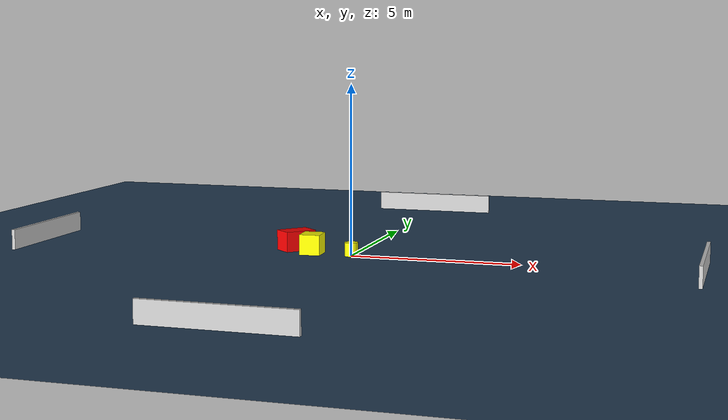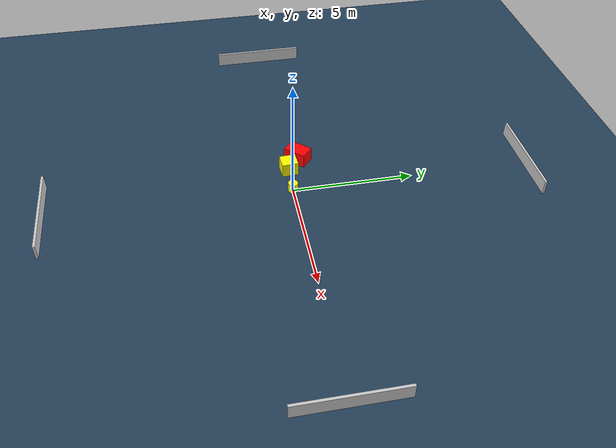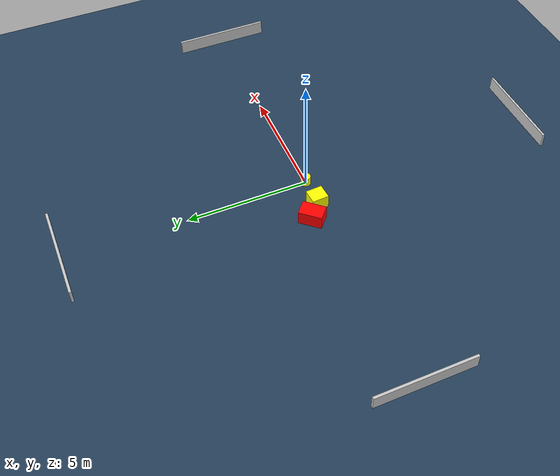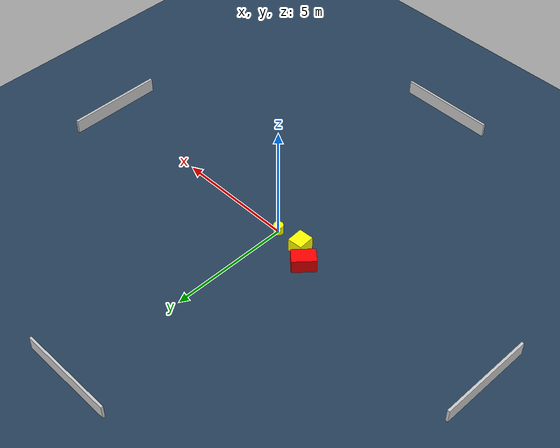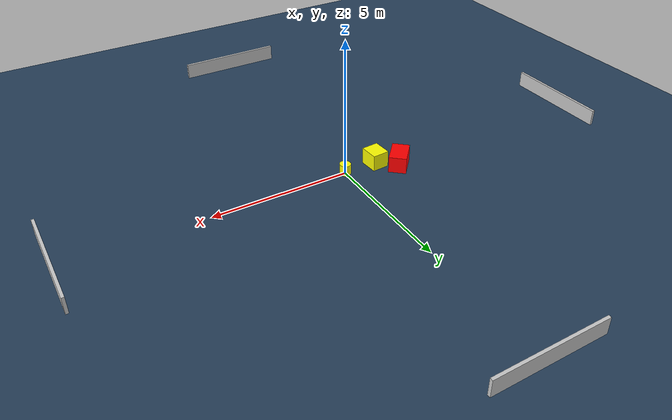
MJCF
<?xml version="1.0" ?>
<mujoco model="generated_environment">
  <option timestep="0.01" integrator="RK4" cone="elliptic"/>
  <default>
    <geom density="1"/>
  </default>
  <asset>
    <texture builtin="gradient" height="3072" name="skybox" rgb1="0.3 0.5 0.7" rgb2="0 0 0" type="skybox" width="512"/>
    <texture builtin="checker" height="300" name="groundplane" rgb1="0.2 0.3 0.4" rgb2="0.1 0.2 0.3" type="2d" width="300"/>
    <material name="groundplane" reflectance="0.2" texrepeat="5 5" texture="groundplane"/>
  </asset>
  <worldbody>
    <light dir="0 0 -1" directional="true" pos="0 0 1.5"/>
    <geom condim="3" friction="0.5 0.005 0.001" material="groundplane" name="floor" pos="0 0 0" size="0 0 0.05" type="plane"/>
    <body name="walls">
      <geom name="wall_1" condim="4" pos="-10.0 0.0 0.3" rgba="0.800000011920929 0.800000011920929 0.800000011920929 1.0" size="0.05 2.0 0.3" type="box"/>
      <geom name="wall_2" condim="4" pos="10.0 0.0 0.3" rgba="0.800000011920929 0.800000011920929 0.800000011920929 1.0" size="0.05 2.0 0.3" type="box"/>
      <geom name="wall_3" condim="4" pos="0.0 -10.0 0.3" rgba="0.800000011920929 0.800000011920929 0.800000011920929 1.0" size="2.0 0.05 0.3" type="box"/>
      <geom name="wall_4" condim="4" pos="0.0 10.0 0.3" rgba="0.800000011920929 0.800000011920929 0.800000011920929 1.0" size="2.0 0.05 0.3" type="box"/>
    </body>
    <body name="robot">
      <joint name="joint_x" type="slide" pos="0 0 0" axis="1 0 0"/>
      <joint name="joint_y" type="slide" pos="0 0 0" axis="0 1 0"/>
      <geom name="robot" type="cylinder" pos="0.0 0.0 0.2" size="0.2 0.2 0.0" mass="5.0" friction="1.0 0.005 0.0001" condim="4" rgba="1.0 1.0 0.0 1.0"/>
    </body>
    <body name="obstacle_1_movable">
      <geom name="obstacle_1_movable" condim="4" pos="-1.2220202087589782 0.03918745208832393 0.3" euler="0 0 273.6477356561691" friction="0.0 0.005 0.001" rgba="1.0 1.0 0.0 1.0" size="0.3412064136028048 0.3088212617695687 0.3" type="box" mass="0.1"/>
      <joint type="free"/>
    </body>
    <body name="obstacle_2_static">
      <geom name="obstacle_2_static" condim="4" pos="-1.8991516065017444 0.5488055879176159 0.3" euler="0 0 318.16023455474794" friction="0.0 0.005 0.001" rgba="1.0 0.0 0.0 1.0" size="0.3129839402330684 0.48174159365131125 0.3" type="box"/>
    </body>
  </worldbody>
  <actuator>
    <motor name="actuator_x" joint="joint_x" gear="1" ctrlrange="-1 1"/>
    <motor name="actuator_y" joint="joint_y" gear="1" ctrlrange="-1 1"/>
  </actuator>
</mujoco>
